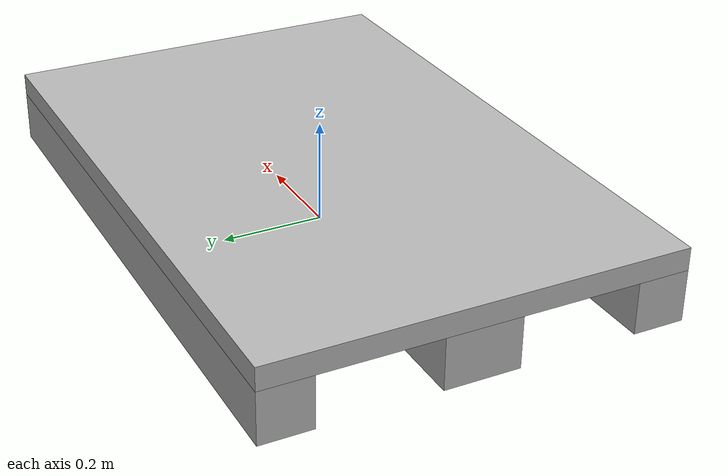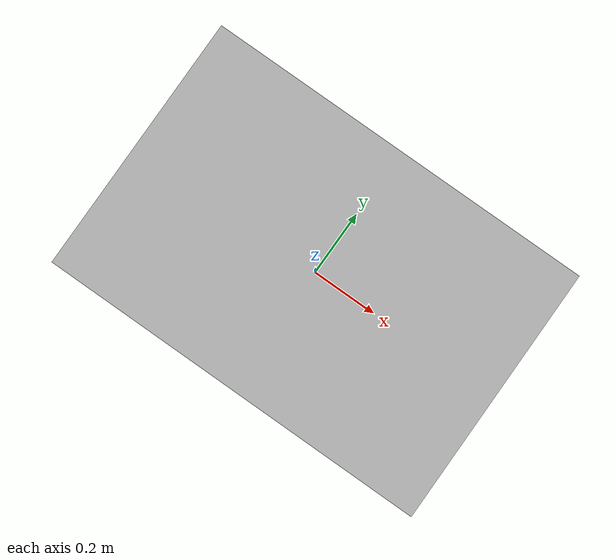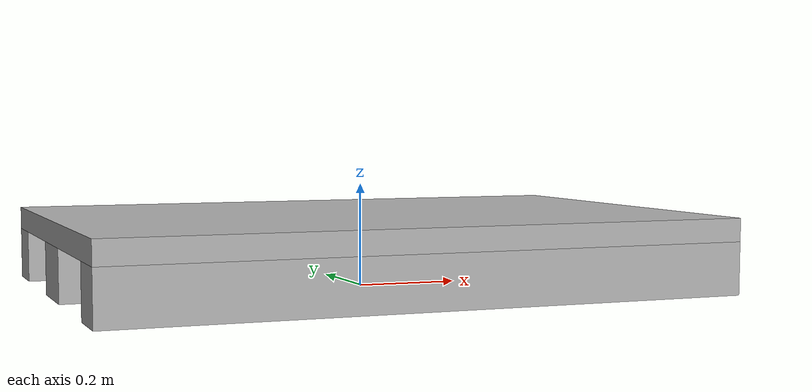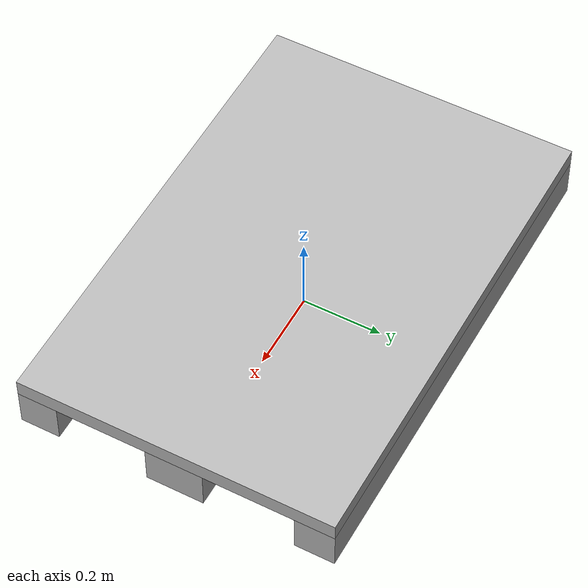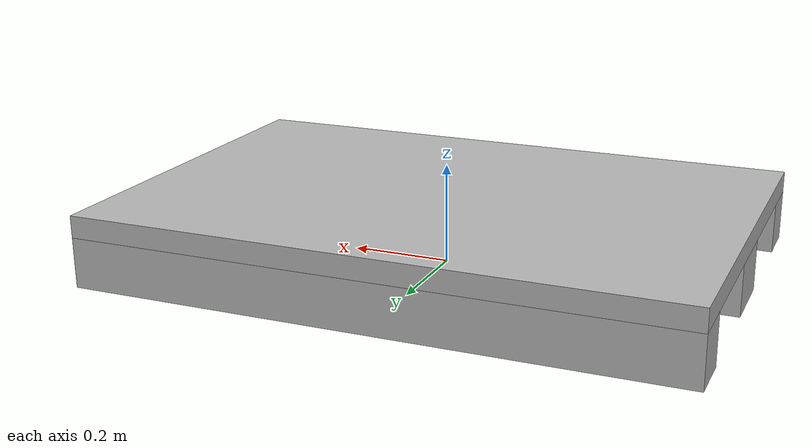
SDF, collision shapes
<?xml version="1.0"?>
<sdf version="1.7">
    <model name="euro_pallet" canonical_link="link" placement_frame="link">
        <static>false</static>
        <link name="link">
            <!--
            Avoid self-collision between the five collision geometries
            inside this link. Default is false, but set explicitly
            to document the intention.
            -->
            <self_collide>false</self_collide>

            <visual name="visual">
                <geometry>
                    <mesh>
                        <uri>model://euro_pallet/meshes/euro_pallet.dae</uri>
                        <scale>1 1 1</scale>
                    </mesh>
                </geometry>
                <!--
                Link of the mesh is at the center of the bottom face of the pallet.
                -->
                <pose>0 0 0 0 0 0</pose>
            </visual>

            <collision name="pallet_top_collision">
                <geometry>
                    <box>
                        <size>1.20 0.8 0.044</size>
                    </box>
                </geometry>
                <pose>0 0 0.122 0 0 0</pose>
            </collision>

            <collision name="pallet_center_collision">
                <geometry>
                    <box>
                        <size>1.20 0.145 0.1</size>
                    </box>
                </geometry>
                <pose>0 0 0.05 0 0 0</pose>
            </collision>

            <collision name="pallet_left_collision">
                <geometry>
                    <box>
                        <size>1.20 0.1 0.1</size>
                    </box>
                </geometry>
                <pose>0 0.35 0.05 0 0 0</pose>
            </collision>

            <collision name="pallet_right_collision">
                <geometry>
                    <box>
                        <size>1.20 0.1 0.1</size>
                    </box>
                </geometry>
                <pose>0 -0.35 0.05 0 0 0</pose>
            </collision>

            <inertial>
                <mass>0.1</mass>
                <inertia>
                    <ixx>0.005506133</ixx>
                    <ixy>0.000000000</ixy>
                    <ixz>0.000000000</ixz>
                    <iyy>0.012172800</iyy>
                    <iyz>0.000000000</iyz>
                    <izz>0.017333333</izz>
                </inertia>
                <!--
                z = whole_body.size_z/2 = 0.144/2 = 0.072 m.
                -->
                <pose>0 0 0.072 0 0 0</pose>
            </inertial>
        </link>
    </model>
</sdf>
